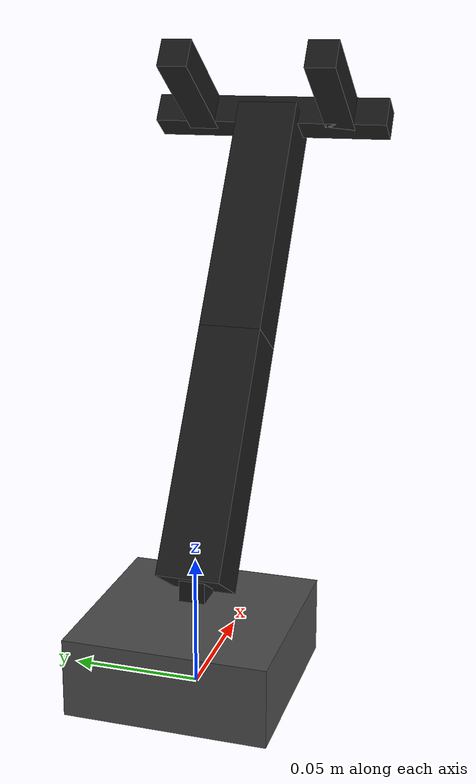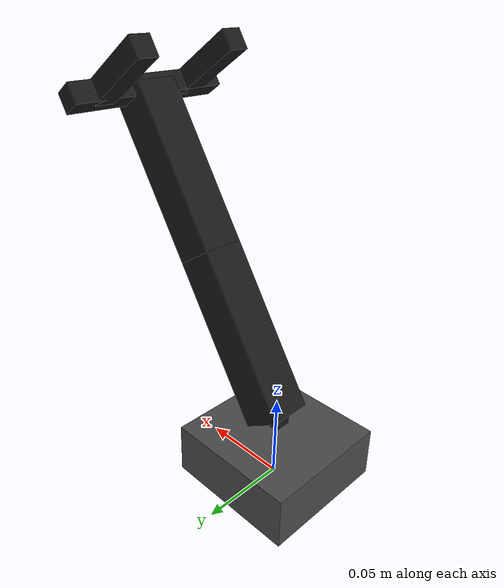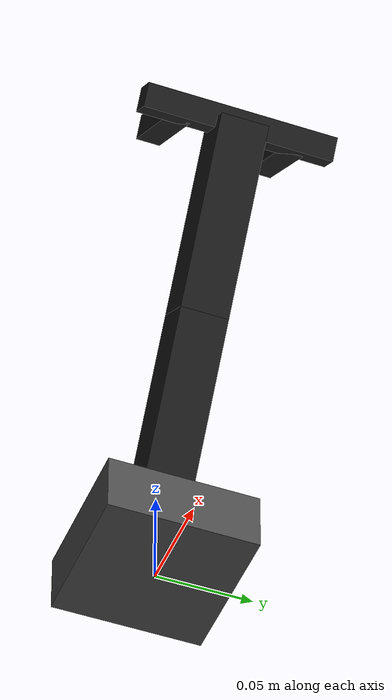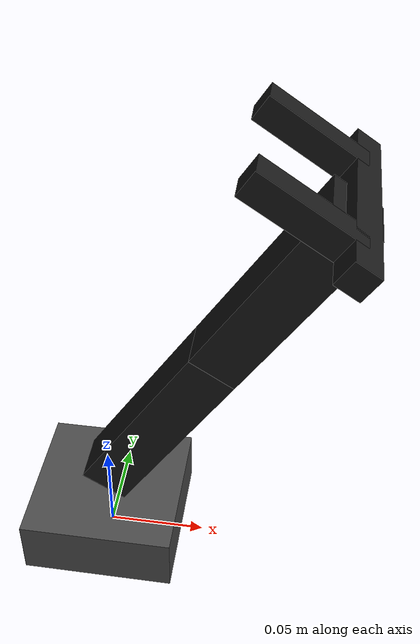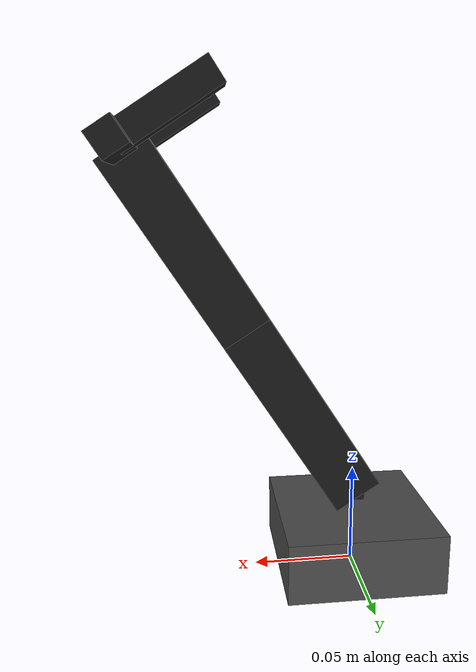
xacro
<?xml version="1.0"?>
<robot name="$(arg robot_name)" xmlns:xacro="http://www.ros.org/wiki/xacro">

  <!-- Constants for robot dimensions -->
  <xacro:property name="PI" value="3.1415926535897931"/>
  <xacro:property name="mass" value="1" /> <!-- arbitrary value for mass -->
  <xacro:property name="base_width" value="0.077" /> <!-- Square dimensions (widthxwidth) of base -->
  <xacro:property name="base_height" value="0.03" /> <!-- Base height -->
  <xacro:property name="conn_to_axle" value="0.0335" /> <!-- Length from attach point to axle -->
  <xacro:property name="servo_height" value="0.045" /> <!-- Height of servo -->
  <xacro:property name="servo_to_axle" value="0.0385" /> <!-- Length from base of servo to axle -->
  <xacro:property name="servotop_to_axle" value="${servo_height - servo_to_axle}" />
  <xacro:property name="smallcon" value="0.0065" /> <!-- Extra spacing due to small connector -->
  <xacro:property name="thick" value="0.025" />
  <xacro:property name="l1" value="0.1" />

  <xacro:macro name="box_inertial" params="x y z mass *origin">
    <inertial>
      <mass value="${mass}" />
      <xacro:insert_block name="origin" />
      <inertia ixx="${0.0833333 * mass * (y*y + z*z)}" ixy="0.0" ixz="0.0"
        iyy="${0.0833333 * mass * (x*x + z*z)}" iyz="0.0"
        izz="${0.0833333 * mass * (x*x + y*y)}" />
    </inertial>
  </xacro:macro>

  <!-- Import all Gazebo-customization elements, including Gazebo colors -->
  <xacro:include filename="$(find inserter_detector)/simulation/inserter/inserter.gazebo" />
  <!-- Import Rviz colors -->
  <xacro:include filename="$(find inserter_detector)/simulation/inserter/materials.xacro" />

  <!-- Used for fixing robot to Gazebo 'base_link' -->
  <link name="world"/>

  <joint name="fixed" type="fixed">
    <parent link="world"/>
    <child link="base_link"/>
  </joint>

  <!-- Base Link -->
  <link name="base_link">
    <collision>
      <origin xyz="0 0 ${base_height/2}" rpy="0 0 0"/>
      <geometry>
        <box size="${base_width} ${base_width} ${base_height}"/>
      </geometry>
    </collision>
    <visual>
      <origin xyz="0 0 ${base_height/2}" rpy="0 0 0"/>
      <geometry>
        <box size="${base_width} ${base_width} ${base_height}"/>
      </geometry>
      <material name="grey"/>
    </visual>
    <xacro:box_inertial mass="1.0" x="${base_width}" y="${base_width}" z="${base_height}">
      <origin xyz="0 0 ${base_height/2}" />
    </xacro:box_inertial>
  </link>

  <joint name="joint1" type="revolute">
    <limit effort="1000.0" lower="0" upper="${2*PI}" velocity="0.5"/>
    <origin rpy="0 0 0" xyz="0 0 ${base_height + 0.01}"/>
    <parent link="base_link"/>
    <child link="link1"/>
    <axis xyz="0 0 1"/>
    <dynamics damping="0.7"/>
  </joint>

  <link name="link1">
    <visual>
      <origin xyz="0 0 0" rpy="0 0 0"/>
      <geometry>
        <box size="0.01 0.01 0.01"/>
      </geometry>
      <material name="dgrey"/>
    </visual>
    <xacro:box_inertial mass="1.0" x="0.1" y="0.1" z="0.1">
      <origin xyz="0 0 0" />
    </xacro:box_inertial>
  </link>

  <joint name="joint2" type="revolute">
    <limit effort="1000.0" lower="0.05" upper="1.1" velocity="0.5"/>
    <origin rpy="0 0 0" xyz="0 0 0"/>
    <parent link="link1"/>
    <child link="link2"/>
    <axis xyz="0 1 0"/>
    <dynamics damping="0.7"/>
  </joint>

  <link name="link2">
    <visual>
      <origin xyz="0 0 ${l1/2}" rpy="0 0 0"/>
      <geometry>
        <box size="${thick} ${thick} ${l1}"/>
      </geometry>
      <material name="dgrey"/>
    </visual>
    <xacro:box_inertial mass="1.0" x="${thick}" y="${thick}" z="${l1}">
      <origin xyz="0 0 ${l1/2}" />
    </xacro:box_inertial>
  </link>

  <joint name="joint3" type="revolute">
    <limit effort="1000.0" lower="-${PI}" upper="${PI}" velocity="0.5"/>
    <origin rpy="0 0 0" xyz="0 0 ${l1}"/>
    <parent link="link2"/>
    <child link="link3"/>
    <mimic joint="joint2" multiplier="-2" offset="${PI}"/>
    <axis xyz="0 1 0"/>
  </joint>

  <link name="link3">
    <visual>
      <origin xyz="0 0 ${l1/2}" rpy="0 0 0"/>
      <geometry>
        <box size="${thick} ${thick} ${l1}"/>
      </geometry>
      <material name="dgrey"/>
    </visual>
    <xacro:box_inertial mass="1.0" x="${thick}" y="${thick}" z="${l1}">
      <origin xyz="0 0 ${l1/2}" />
    </xacro:box_inertial>
  </link>

  <joint name="joint4" type="revolute">
    <limit effort="1000.0" lower="-${PI*0.6}" upper="${PI*0.6}" velocity="0.5"/>
    <origin rpy="0 0 0" xyz="0 0 ${l1}"/>
    <parent link="link3"/>
    <child link="link4"/>
    <mimic joint="joint2" multiplier="1" offset="0"/>
    <axis xyz="0 1 0"/>
  </joint>

  <link name="link4">
    <visual>
      <origin xyz="0 0 0" rpy="0 0 0"/>
      <geometry>
        <box size="${thick/2} ${l1} ${thick/2}"/>
      </geometry>
      <material name="dgrey"/>
    </visual>
    <xacro:box_inertial mass="0.1" x="${thick/2}" y="${l1}" z="${thick/2}">
      <origin xyz="0 0 0" />
    </xacro:box_inertial>
  </link>

  <joint name="joint5" type="prismatic">
    <limit effort="1000.0" lower="0.01" upper="0.05" velocity="0.5"/>
    <origin rpy="0 0 0" xyz="0 0 0"/>
    <parent link="link4"/>
    <child link="link5"/>
    <axis xyz="0 1 0"/>
  </joint>

  <link name="link5">
    <visual>
      <origin xyz="${-l1/4} 0 0" rpy="0 0 0"/>
      <geometry>
        <box size="${l1/2} ${thick/2} ${thick/2}"/>
      </geometry>
      <material name="dgrey"/>
    </visual>
    <xacro:box_inertial mass="0.1" x="${l1/2}" y="${thick/2}" z="${thick/2}">
      <origin xyz="${-l1/4} 0 0" />
    </xacro:box_inertial>
  </link>

  <joint name="joint6" type="prismatic">
    <limit effort="1000.0" lower="0.01" upper="0.05" velocity="0.5"/>
    <origin rpy="0 0 0" xyz="0 0 0"/>
    <parent link="link4"/>
    <child link="link6"/>
    <axis xyz="0 -1 0"/>
    <mimic joint="joint5" multiplier="1" offset="0"/>
  </joint>

  <link name="link6">
    <visual>
      <origin xyz="${-l1/4} 0 0" rpy="0 0 0"/>
      <geometry>
        <box size="${l1/2} ${thick/2} ${thick/2}"/>
      </geometry>
      <material name="dgrey"/>
    </visual>
    <xacro:box_inertial mass="0.1" x="${l1/2}" y="${thick/2}" z="${thick/2}">
      <origin xyz="${-l1/4} 0 0" />
    </xacro:box_inertial>
  </link>

  <transmission name="tran1">
    <type>transmission_interface/SimpleTransmission</type>
    <actuator name="motor1">
      <mechanicalReduction>1</mechanicalReduction>
    </actuator>
    <joint name="joint1">
      <hardwareInterface>hardware_interface/PositionJointInterface</hardwareInterface>
    </joint>
  </transmission>
  <transmission name="tran2">
    <type>transmission_interface/SimpleTransmission</type>
    <actuator name="motor2">
      <mechanicalReduction>1</mechanicalReduction>
    </actuator>
    <joint name="joint2">
      <hardwareInterface>hardware_interface/PositionJointInterface</hardwareInterface>
    </joint>
  </transmission>
  <transmission name="tran5">
    <type>transmission_interface/SimpleTransmission</type>
    <actuator name="motor5">
      <mechanicalReduction>1</mechanicalReduction>
    </actuator>
    <joint name="joint5">
      <hardwareInterface>hardware_interface/PositionJointInterface</hardwareInterface>
    </joint>
  </transmission>

  <xacro:macro name="mimic_joint_plugin_gazebo" params="name_prefix parent_joint mimic_joint has_pid:=false multiplier:=1.0 offset:=0 sensitiveness:=0.0 max_effort:=1.0 robot_namespace:=''">
    <gazebo>
      <plugin name="${name_prefix}mimic_joint_plugin" filename="libroboticsgroup_gazebo_mimic_joint_plugin.so">
        <joint>${parent_joint}</joint>
        <mimicJoint>${mimic_joint}</mimicJoint>
        <xacro:if value="${has_pid}">                     <!-- if set to true, PID parameters from "/gazebo_ros_control/pid_gains/${mimic_joint}" are loaded -->
          <hasPID />
        </xacro:if>
        <multiplier>${multiplier}</multiplier>
        <offset>${offset}</offset>
        <sensitiveness>${sensitiveness}</sensitiveness>   <!-- if absolute difference between setpoint and process value is below this threshold, do nothing; 0.0 = disable [rad] -->
        <maxEffort>${max_effort}</maxEffort>              <!-- only taken into account if has_pid:=true [Nm] -->
        <xacro:unless value="${robot_namespace == ''}">
          <robotNamespace>${robot_namespace}</robotNamespace>
        </xacro:unless>
      </plugin>
    </gazebo>
  </xacro:macro>

  <xacro:mimic_joint_plugin_gazebo name_prefix="joint3"
    parent_joint="joint2" mimic_joint="joint3"
    has_pid="false" multiplier="-2.0" offset="${PI}" max_effort="20.0"
    robot_namespace="/$(arg robot_name)"/>
  <xacro:mimic_joint_plugin_gazebo name_prefix="joint4"
    parent_joint="joint2" mimic_joint="joint4"
    has_pid="false" multiplier="1.0" max_effort="20.0"
    robot_namespace="/$(arg robot_name)"/>
  <xacro:mimic_joint_plugin_gazebo name_prefix="joint6"
    parent_joint="joint5" mimic_joint="joint6"
    has_pid="false" multiplier="1.0" max_effort="100.0"
    robot_namespace="/$(arg robot_name)"/>
</robot>

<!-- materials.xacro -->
<robot>

  <material name="black">
    <color rgba="0.0 0.0 0.0 1.0"/>
  </material>

  <material name="blue">
    <color rgba="0.0 0.0 0.8 1.0"/>
  </material>

  <material name="green">
    <color rgba="0.0 0.8 0.0 1.0"/>
  </material>

  <material name="grey">
    <color rgba="0.3 0.3 0.3 1.0"/>
  </material>

  <material name="dgrey">
    <color rgba="0.1 0.1 0.1 1.0"/>
  </material>

  <material name="orange">
    <color rgba="${255/255} ${108/255} ${10/255} 1.0"/>
  </material>

  <material name="brown">
    <color rgba="${222/255} ${207/255} ${195/255} 1.0"/>
  </material>

  <material name="red">
    <color rgba="0.8 0.0 0.0 1.0"/>
  </material>

  <material name="white">
    <color rgba="1.0 1.0 1.0 1.0"/>
  </material>

</robot>
